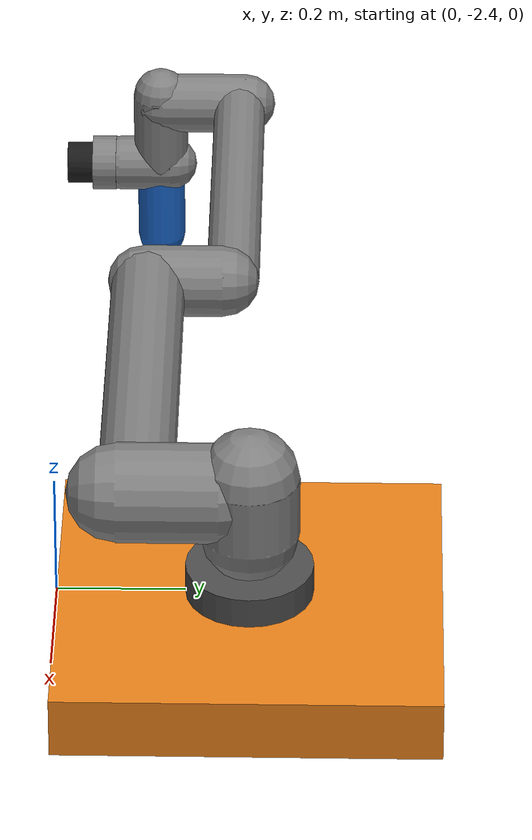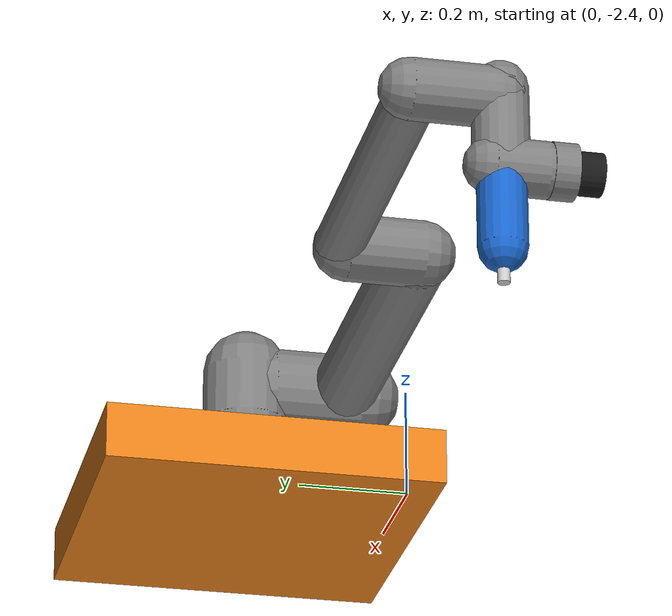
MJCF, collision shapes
<mujoco model="ur10e">
  <compiler angle="radian"  autolimits="true" />

  <option integrator="implicitfast" />

  <default>
    <default class="ur10e">
      <material specular="0.5" shininess="0.25" />
      <joint axis="0 1 0" range="-6.28319 6.28319" armature="0.1" />
      <position ctrlrange="-6.2831 6.2831" />
      <general biastype="affine" ctrlrange="-6.2831 6.2831" gainprm="5000" biasprm="0 -5000 -500" />
      <default class="size4">
        <joint damping="10" />
        <general forcerange="-330 330" />
      </default>
      <default class="size3">
        <joint damping="5" />
        <general forcerange="-150 150" />
        <default class="size3_limited">
          <joint range="-3.1415 3.1415" />
          <general ctrlrange="-3.1415 3.1415" />
        </default>
      </default>
      <default class="size2">
        <joint damping="2" />
        <general forcerange="-56 56" />
      </default>
      <default class="visual">
        <geom type="mesh" contype="0" conaffinity="0" group="2" />
      </default>
      <default class="collision">
        <geom type="capsule" group="3" />
        <default class="eef_collision">
          <geom type="cylinder" />
        </default>
      </default>
      <site size="0.001" rgba="0.5 0.5 0.5 0.3" group="4" />
    </default>
  </default>

  <asset>
    <material class="ur10e" name="black" rgba="0.033 0.033 0.033 1" />
    <material class="ur10e" name="jointgray" rgba="0.278 0.278 0.278 1" />
    <material class="ur10e" name="linkgray" rgba="0.82 0.82 0.82 1" />
    <material class="ur10e" name="urblue" rgba="0.49 0.678 0.8 1" />

    <mesh file="../assets/robot/ur10e/assets/base_0.obj" />
    <mesh file="../assets/robot/ur10e/assets/base_1.obj" />
    <mesh file="../assets/robot/ur10e/assets/shoulder_0.obj" />
    <mesh file="../assets/robot/ur10e/assets/shoulder_1.obj" />
    <mesh file="../assets/robot/ur10e/assets/shoulder_2.obj" />
    <mesh file="../assets/robot/ur10e/assets/upperarm_0.obj" />
    <mesh file="../assets/robot/ur10e/assets/upperarm_1.obj" />
    <mesh file="../assets/robot/ur10e/assets/upperarm_2.obj" />
    <mesh file="../assets/robot/ur10e/assets/upperarm_3.obj" />
    <mesh file="../assets/robot/ur10e/assets/forearm_0.obj" />
    <mesh file="../assets/robot/ur10e/assets/forearm_1.obj" />
    <mesh file="../assets/robot/ur10e/assets/forearm_2.obj" />
    <mesh file="../assets/robot/ur10e/assets/forearm_3.obj" />
    <mesh file="../assets/robot/ur10e/assets/wrist1_0.obj" />
    <mesh file="../assets/robot/ur10e/assets/wrist1_1.obj" />
    <mesh file="../assets/robot/ur10e/assets/wrist1_2.obj" />
    <mesh file="../assets/robot/ur10e/assets/wrist2_0.obj" />
    <mesh file="../assets/robot/ur10e/assets/wrist2_1.obj" />
    <mesh file="../assets/robot/ur10e/assets/wrist2_2.obj" />
    <mesh file="../assets/robot/ur10e/assets/wrist3.obj" />
  </asset>

  <worldbody>
    <light name="spotlight" mode="targetbodycom" target="wrist_2_link" pos="0 -1 2" />
    <body name="base" quat="0 0 0 -1" pos="0 -2.1 0" childclass="ur10e">
      <joint name="rail_slider" type="slide" axis="1 0 0" range="-2.7 2.7" damping="50"/>
      <!-- Robot Pedestal/Slider Carriage (Moves with robot) -->
      <geom name="robot_carriage" type="box" size="0.3 0.3 0.05" pos="0 0 -0.05" rgba="0.9 0.5 0.1 1" contype="0" conaffinity="0"/>
      <geom name="robot_pedestal" type="cylinder" size="0.1 0.05" pos="0 0 0" rgba="0.3 0.3 0.3 1" contype="0" conaffinity="0"/>
      <inertial mass="4.0" pos="0 0 0" diaginertia="0.0061063308908 0.0061063308908 0.01125" />
      <geom mesh="base_0" material="black" class="visual" />
      <geom mesh="base_1" material="jointgray" class="visual" />
      <body name="shoulder_link" pos="0 0 0.181">
        <inertial pos="0 0 0" mass="7.778" diaginertia="0.0314743 0.0314743 0.0218756" />
        <joint name="shoulder_pan_joint" class="size4" axis="0 0 1" />
        <geom mesh="shoulder_0" material="urblue" class="visual" />
        <geom mesh="shoulder_1" material="black" class="visual" />
        <geom mesh="shoulder_2" material="jointgray" class="visual" />
        <geom class="collision" size="0.078 0.05" pos="0 0 -0.02" />
        <body name="upper_arm_link" pos="0 0.176 0" quat="1 0 1 0">
          <inertial pos="0 0 0.3065" mass="12.93" diaginertia="0.423074 0.423074 0.0363656" />
          <joint name="shoulder_lift_joint" class="size4" />
          <geom mesh="upperarm_0" material="black" class="visual" />
          <geom mesh="upperarm_1" material="jointgray" class="visual" />
          <geom mesh="upperarm_2" material="urblue" class="visual" />
          <geom mesh="upperarm_3" material="linkgray" class="visual" />
          <geom class="collision" pos="0 -0.05 0" quat="1 1 0 0" size="0.078 0.08" />
          <geom class="collision" size="0.06 0.3" pos="0 0 0.3" />
          <body name="forearm_link" pos="0 -0.137 0.613">
            <inertial pos="0 0 0.2855" mass="3.87" diaginertia="0.11059 0.11059 0.0108844" />
            <joint name="elbow_joint" class="size3_limited" />
            <geom mesh="forearm_0" material="urblue" class="visual" />
            <geom mesh="forearm_1" material="black" class="visual" />
            <geom mesh="forearm_2" material="jointgray" class="visual" />
            <geom mesh="forearm_3" material="linkgray" class="visual" />
            <geom class="collision" pos="0 0.08 0" quat="1 1 0 0" size="0.058 0.065" />
            <geom class="collision" size="0.043 0.28" pos="0 0 0.29" />
            <body name="wrist_1_link" pos="0 0 0.571" quat="1 0 1 0">
              <inertial pos="0 0.135 0" quat="0.5 0.5 -0.5 0.5" mass="1.96" diaginertia="0.0055125 0.00510825 0.00510825" />
              <joint name="wrist_1_joint" class="size2" />
              <geom mesh="wrist1_0" material="black" class="visual" />
              <geom mesh="wrist1_1" material="urblue" class="visual" />
              <geom mesh="wrist1_2" material="jointgray" class="visual" />
              <geom class="collision" pos="0 0.06 0" quat="1 1 0 0" size="0.05 0.07" />
              <body name="wrist_2_link" pos="0 0.135 0">
                <inertial pos="0 0 0.12" quat="0.5 0.5 -0.5 0.5" mass="1.96" diaginertia="0.0055125 0.00510825 0.00510825" />
                <joint name="wrist_2_joint" axis="0 0 1" class="size2" />
                <geom mesh="wrist2_0" material="black" class="visual" />
                <geom mesh="wrist2_1" material="urblue" class="visual" />
                <geom mesh="wrist2_2" material="jointgray" class="visual" />
                <geom class="collision" size="0.046 0.065" pos="0 0 0.05" />
                <geom class="collision" pos="0 0.028 0.12" quat="1 1 0 0" size="0.046 0.043" />
                <body name="wrist_3_link" pos="0 0 0.12">
                  <inertial pos="0 0.092 0" quat="0 1 -1 0" mass="0.202" diaginertia="0.000204525 0.000144346 0.000144346" />
                  <joint name="wrist_3_joint" class="size2" />
                  <geom material="linkgray" mesh="wrist3" class="visual" />
                  <geom class="eef_collision" pos="0 0.097 0" quat="1 1 0 0" size="0.046 0.02" />
                  <site name="attachment_site" pos="0 0.1 0" quat="-1 1 0 0" />
                <body name="painting_tool" pos="0 0.1 0" euler="1.5707 0 0">
                  <!-- Tool Mount / Handle -->
                  <geom type="cylinder" size="0.035 0.06" rgba="0.1 0.1 0.1 1" />
                  <!-- Spray Gun Main Body -->
                  <geom type="capsule" size="0.04 0.1" pos="0 0.04 0.1" euler="1.5707 0 0" rgba="0.1 0.4 0.8 1" />
                  <!-- Spray Nozzle -->
                  <geom type="cylinder" size="0.01 0.04" pos="0 0.16 0.1" euler="1.5707 0 0" rgba="0.8 0.8 0.8 1" />
                  <!-- TCP (Tool Center Point) exactly at the nozzle tip -->
                  <site name="tcp" pos="0 0.2 0.1" rgba="1 0 0 1" size="0.01" />
                </body></body>
              </body>
            </body>
          </body>
        </body>
      </body>
    </body>
  </worldbody>

  <actuator>
    <position name="rail_motor" joint="rail_slider" ctrlrange="-2.7 2.7" kp="100000"/>
    <general class="size4" name="shoulder_pan" joint="shoulder_pan_joint" />
    <general class="size4" name="shoulder_lift" joint="shoulder_lift_joint" />
    <general class="size3_limited" name="elbow" joint="elbow_joint" />
    <general class="size2" name="wrist_1" joint="wrist_1_joint" />
    <general class="size2" name="wrist_2" joint="wrist_2_joint" />
    <general class="size2" name="wrist_3" joint="wrist_3_joint" />
  </actuator>

  <keyframe>
    <key name="home" qpos="0 -1.5708 -1.5708 1.5708 -1.5708 -1.5708 0" ctrl="0 -1.5708 -1.5708 1.5708 -1.5708 -1.5708 0" />
  </keyframe>
</mujoco>
